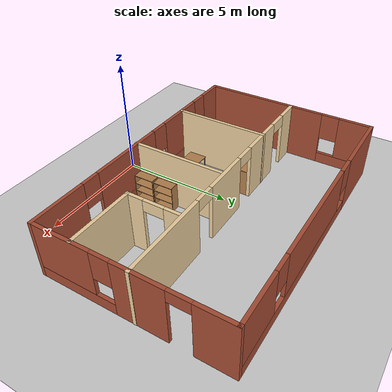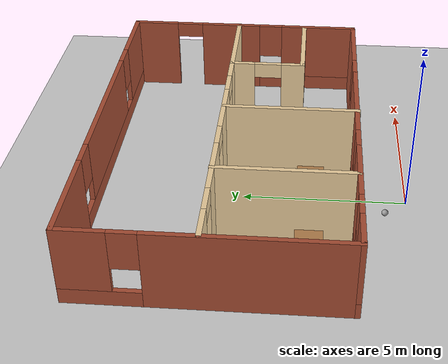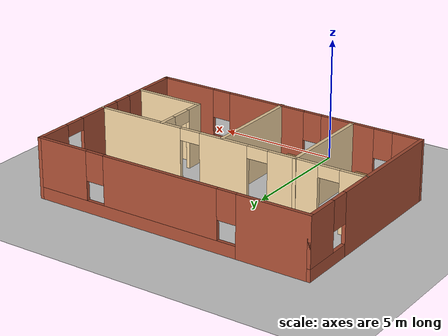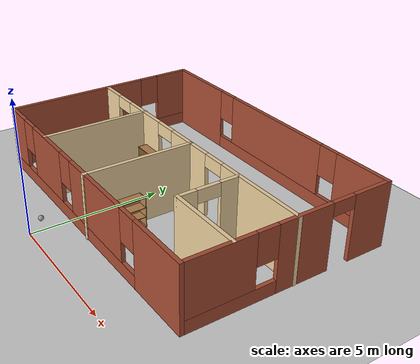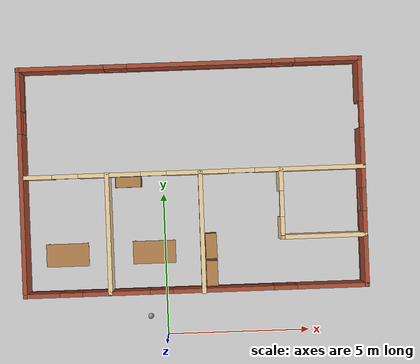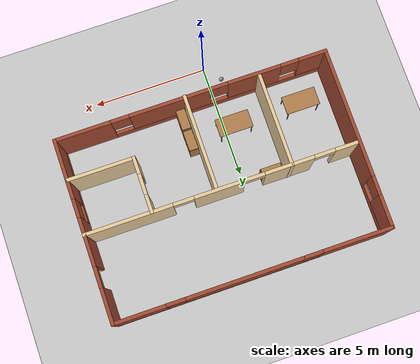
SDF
<sdf version="1.7">
 <world name="default">
  <model name="ground_plane">
   <static>1</static>
   <link name="link">
    <collision name="collision">
     <geometry><plane><normal>0 0 1</normal><size>100 100</size></plane></geometry>
     <surface>
      <contact><collide_bitmask>65535</collide_bitmask></contact>
      <friction><ode><mu>100</mu><mu2>50</mu2></ode></friction>
     </surface>
    </collision>
    <visual name="visual">
     <cast_shadows>0</cast_shadows>
     <geometry><plane><normal>0 0 1</normal><size>100 100</size></plane></geometry>
     <material>
      <script><uri>file://media/materials/scripts/gazebo.material</uri><name>Gazebo/Grey</name></script>
     </material>
    </visual>
   </link>
  </model>
  <model name="Building">
   <pose>1.04028 5.52884 0 0 -0 0</pose>
   <link name="Wall_0">
    <pose>-5.93028 0.01616 0 0 -0 1.5708</pose>
    <visual name="Wall_0_Visual_0">
     <pose>-1.14394 0 1.25 0 -0 0</pose>
     <geometry><box><size>5.71213 0.15 2.5</size></box></geometry>
     <material>
      <script><uri>file://media/materials/scripts/gazebo.material</uri><name>Gazebo/Bricks</name></script>
      <ambient>1 1 1 1</ambient>
     </material>
     <meta><layer>0</layer></meta>
    </visual>
    <collision name="Wall_0_Collision_0">
     <geometry><box><size>5.71213 0.15 2.5</size></box></geometry>
     <pose>-1.14394 0 1.25 0 -0 0</pose>
    </collision>
    <visual name="Wall_0_Visual_1">
     <pose>2.85606 0 0.25 0 -0 0</pose>
     <geometry><box><size>2.28788 0.15 0.5</size></box></geometry>
     <material>
      <script><uri>file://media/materials/scripts/gazebo.material</uri><name>Gazebo/Bricks</name></script>
      <ambient>1 1 1 1</ambient>
     </material>
     <meta><layer>0</layer></meta>
    </visual>
    <collision name="Wall_0_Collision_1">
     <geometry><box><size>2.28788 0.15 0.5</size></box></geometry>
     <pose>2.85606 0 0.25 0 -0 0</pose>
    </collision>
    <visual name="Wall_0_Visual_2">
     <pose>3.25606 0 1.5 0 -0 0</pose>
     <geometry><box><size>1.48788 0.15 2</size></box></geometry>
     <material>
      <script><uri>file://media/materials/scripts/gazebo.material</uri><name>Gazebo/Bricks</name></script>
      <ambient>1 1 1 1</ambient>
     </material>
     <meta><layer>0</layer></meta>
    </visual>
    <collision name="Wall_0_Collision_2">
     <geometry><box><size>1.48788 0.15 2</size></box></geometry>
     <pose>3.25606 0 1.5 0 -0 0</pose>
    </collision>
    <visual name="Wall_0_Visual_3">
     <pose>2.11212 0 1.9 0 -0 0</pose>
     <geometry><box><size>0.8 0.15 1.2</size></box></geometry>
     <material>
      <script><uri>file://media/materials/scripts/gazebo.material</uri><name>Gazebo/Bricks</name></script>
      <ambient>1 1 1 1</ambient>
     </material>
     <meta><layer>0</layer></meta>
    </visual>
    <collision name="Wall_0_Collision_3">
     <geometry><box><size>0.8 0.15 1.2</size></box></geometry>
     <pose>2.11212 0 1.9 0 -0 0</pose>
    </collision>
   </link>
   <link name="Wall_1">
    <pose>-0.005278 3.94116 0 0 -0 0</pose>
    <visual name="Wall_1_Visual_0">
     <pose>-4.47581 0 1.25 0 -0 0</pose>
     <geometry><box><size>3.04838 0.15 2.5</size></box></geometry>
     <material>
      <script><uri>file://media/materials/scripts/gazebo.material</uri><name>Gazebo/Bricks</name></script>
      <ambient>1 1 1 1</ambient>
     </material>
     <meta><layer>0</layer></meta>
    </visual>
    <collision name="Wall_1_Collision_0">
     <geometry><box><size>3.04838 0.15 2.5</size></box></geometry>
     <pose>-4.47581 0 1.25 0 -0 0</pose>
    </collision>
    <visual name="Wall_1_Visual_1">
     <pose>1.52419 0 0.25 0 -0 0</pose>
     <geometry><box><size>8.95162 0.15 0.5</size></box></geometry>
     <material>
      <script><uri>file://media/materials/scripts/gazebo.material</uri><name>Gazebo/Bricks</name></script>
      <ambient>1 1 1 1</ambient>
     </material>
     <meta><layer>0</layer></meta>
    </visual>
    <collision name="Wall_1_Collision_1">
     <geometry><box><size>8.95162 0.15 0.5</size></box></geometry>
     <pose>1.52419 0 0.25 0 -0 0</pose>
    </collision>
    <visual name="Wall_1_Visual_2">
     <pose>0.370959 0 1.5 0 -0 0</pose>
     <geometry><box><size>5.04515 0.15 2</size></box></geometry>
     <material>
      <script><uri>file://media/materials/scripts/gazebo.material</uri><name>Gazebo/Bricks</name></script>
      <ambient>1 1 1 1</ambient>
     </material>
     <meta><layer>0</layer></meta>
    </visual>
    <collision name="Wall_1_Collision_2">
     <geometry><box><size>5.04515 0.15 2</size></box></geometry>
     <pose>0.370959 0 1.5 0 -0 0</pose>
    </collision>
    <visual name="Wall_1_Visual_3">
     <pose>4.84677 0 1.5 0 -0 0</pose>
     <geometry><box><size>2.30647 0.15 2</size></box></geometry>
     <material>
      <script><uri>file://media/materials/scripts/gazebo.material</uri><name>Gazebo/Bricks</name></script>
      <ambient>1 1 1 1</ambient>
     </material>
     <meta><layer>0</layer></meta>
    </visual>
    <collision name="Wall_1_Collision_3">
     <geometry><box><size>2.30647 0.15 2</size></box></geometry>
     <pose>4.84677 0 1.5 0 -0 0</pose>
    </collision>
    <visual name="Wall_1_Visual_4">
     <pose>-2.55162 0 1.9 0 -0 0</pose>
     <geometry><box><size>0.8 0.15 1.2</size></box></geometry>
     <material>
      <script><uri>file://media/materials/scripts/gazebo.material</uri><name>Gazebo/Bricks</name></script>
      <ambient>1 1 1 1</ambient>
     </material>
     <meta><layer>0</layer></meta>
    </visual>
    <collision name="Wall_1_Collision_4">
     <geometry><box><size>0.8 0.15 1.2</size></box></geometry>
     <pose>-2.55162 0 1.9 0 -0 0</pose>
    </collision>
    <visual name="Wall_1_Visual_5">
     <pose>3.29353 0 1.9 0 -0 0</pose>
     <geometry><box><size>0.8 0.15 1.2</size></box></geometry>
     <material>
      <script><uri>file://media/materials/scripts/gazebo.material</uri><name>Gazebo/Bricks</name></script>
      <ambient>1 1 1 1</ambient>
     </material>
     <meta><layer>0</layer></meta>
    </visual>
    <collision name="Wall_1_Collision_5">
     <geometry><box><size>0.8 0.15 1.2</size></box></geometry>
     <pose>3.29353 0 1.9 0 -0 0</pose>
    </collision>
   </link>
   <link name="Wall_11">
    <collision name="Wall_11_Collision">
     <geometry><box><size>4.25 0.15 2.5</size></box></geometry>
     <pose>0 0 1.25 0 -0 0</pose>
    </collision>
    <visual name="Wall_11_Visual">
     <pose>0 0 1.25 0 -0 0</pose>
     <geometry><box><size>4.25 0.15 2.5</size></box></geometry>
     <material>
      <script><uri>file://media/materials/scripts/gazebo.material</uri><name>Gazebo/Grey</name></script>
      <ambient>0.921569 0.807843 0.615686 1</ambient>
     </material>
     <meta><layer>0</layer></meta>
    </visual>
    <pose>0.272165 -1.89116 0 0 0 -1.5708</pose>
   </link>
   <link name="Wall_13">
    <pose>3.06519 -0.98956 0 0 0 -1.5708</pose>
    <visual name="Wall_13_Visual_0">
     <pose>-0.838996 0 1.25 0 -0 0</pose>
     <geometry><box><size>0.822009 0.15 2.5</size></box></geometry>
     <material>
      <script><uri>file://media/materials/scripts/gazebo.material</uri><name>Gazebo/Grey</name></script>
      <ambient>0.921569 0.807843 0.615686 1</ambient>
     </material>
     <meta><layer>0</layer></meta>
    </visual>
    <collision name="Wall_13_Collision_0">
     <geometry><box><size>0.822009 0.15 2.5</size></box></geometry>
     <pose>-0.838996 0 1.25 0 -0 0</pose>
    </collision>
    <visual name="Wall_13_Visual_1">
     <pose>0.861004 0 1.25 0 -0 0</pose>
     <geometry><box><size>0.777991 0.15 2.5</size></box></geometry>
     <material>
      <script><uri>file://media/materials/scripts/gazebo.material</uri><name>Gazebo/Grey</name></script>
      <ambient>0.921569 0.807843 0.615686 1</ambient>
     </material>
     <meta><layer>0</layer></meta>
    </visual>
    <collision name="Wall_13_Collision_1">
     <geometry><box><size>0.777991 0.15 2.5</size></box></geometry>
     <pose>0.861004 0 1.25 0 -0 0</pose>
    </collision>
    <visual name="Wall_13_Visual_2">
     <pose>0.022009 0 2.25 0 -0 0</pose>
     <geometry><box><size>0.9 0.15 0.5</size></box></geometry>
     <material>
      <script><uri>file://media/materials/scripts/gazebo.material</uri><name>Gazebo/Grey</name></script>
      <ambient>0.921569 0.807843 0.615686 1</ambient>
     </material>
     <meta><layer>0</layer></meta>
    </visual>
    <collision name="Wall_13_Collision_2">
     <geometry><box><size>0.9 0.15 0.5</size></box></geometry>
     <pose>0.022009 0 2.25 0 -0 0</pose>
    </collision>
   </link>
   <link name="Wall_14">
    <collision name="Wall_14_Collision">
     <geometry><box><size>3 0.15 2.5</size></box></geometry>
     <pose>0 0 1.25 0 -0 0</pose>
    </collision>
    <visual name="Wall_14_Visual">
     <pose>0 0 1.25 0 -0 0</pose>
     <geometry><box><size>3 0.15 2.5</size></box></geometry>
     <material>
      <script><uri>file://media/materials/scripts/gazebo.material</uri><name>Gazebo/Grey</name></script>
      <ambient>0.921569 0.807843 0.615686 1</ambient>
     </material>
     <meta><layer>0</layer></meta>
    </visual>
    <pose>4.49019 -2.16456 0 0 -0 0</pose>
   </link>
   <link name="Wall_2">
    <pose>5.91972 0.01616 0 0 0 -1.5708</pose>
    <visual name="Wall_2_Visual_0">
     <pose>-3.21405 0 1.25 0 -0 0</pose>
     <geometry><box><size>1.57191 0.15 2.5</size></box></geometry>
     <material>
      <script><uri>file://media/materials/scripts/gazebo.material</uri><name>Gazebo/Bricks</name></script>
      <ambient>1 1 1 1</ambient>
     </material>
     <meta><layer>0</layer></meta>
    </visual>
    <collision name="Wall_2_Collision_0">
     <geometry><box><size>1.57191 0.15 2.5</size></box></geometry>
     <pose>-3.21405 0 1.25 0 -0 0</pose>
    </collision>
    <visual name="Wall_2_Visual_1">
     <pose>-0.481912 0 1.25 0 -0 0</pose>
     <geometry><box><size>2.09236 0.15 2.5</size></box></geometry>
     <material>
      <script><uri>file://media/materials/scripts/gazebo.material</uri><name>Gazebo/Bricks</name></script>
      <ambient>1 1 1 1</ambient>
     </material>
     <meta><layer>0</layer></meta>
    </visual>
    <collision name="Wall_2_Collision_1">
     <geometry><box><size>2.09236 0.15 2.5</size></box></geometry>
     <pose>-0.481912 0 1.25 0 -0 0</pose>
    </collision>
    <visual name="Wall_2_Visual_2">
     <pose>2.28213 0 0.25 0 -0 0</pose>
     <geometry><box><size>3.43573 0.15 0.5</size></box></geometry>
     <material>
      <script><uri>file://media/materials/scripts/gazebo.material</uri><name>Gazebo/Bricks</name></script>
      <ambient>1 1 1 1</ambient>
     </material>
     <meta><layer>0</layer></meta>
    </visual>
    <collision name="Wall_2_Collision_2">
     <geometry><box><size>3.43573 0.15 0.5</size></box></geometry>
     <pose>2.28213 0 0.25 0 -0 0</pose>
    </collision>
    <visual name="Wall_2_Visual_3">
     <pose>2.68214 0 1.5 0 -0 0</pose>
     <geometry><box><size>2.63573 0.15 2</size></box></geometry>
     <material>
      <script><uri>file://media/materials/scripts/gazebo.material</uri><name>Gazebo/Bricks</name></script>
      <ambient>1 1 1 1</ambient>
     </material>
     <meta><layer>0</layer></meta>
    </visual>
    <collision name="Wall_2_Collision_3">
     <geometry><box><size>2.63573 0.15 2</size></box></geometry>
     <pose>2.68214 0 1.5 0 -0 0</pose>
    </collision>
    <visual name="Wall_2_Visual_4">
     <pose>0.964269 0 1.9 0 -0 0</pose>
     <geometry><box><size>0.8 0.15 1.2</size></box></geometry>
     <material>
      <script><uri>file://media/materials/scripts/gazebo.material</uri><name>Gazebo/Bricks</name></script>
      <ambient>1 1 1 1</ambient>
     </material>
     <meta><layer>0</layer></meta>
    </visual>
    <collision name="Wall_2_Collision_4">
     <geometry><box><size>0.8 0.15 1.2</size></box></geometry>
     <pose>0.964269 0 1.9 0 -0 0</pose>
    </collision>
    <visual name="Wall_2_Visual_5">
     <pose>-1.97809 0 2.25 0 -0 0</pose>
     <geometry><box><size>0.9 0.15 0.5</size></box></geometry>
     <material>
      <script><uri>file://media/materials/scripts/gazebo.material</uri><name>Gazebo/Bricks</name></script>
      <ambient>1 1 1 1</ambient>
     </material>
     <meta><layer>0</layer></meta>
    </visual>
    <collision name="Wall_2_Collision_5">
     <geometry><box><size>0.9 0.15 0.5</size></box></geometry>
     <pose>-1.97809 0 2.25 0 -0 0</pose>
    </collision>
   </link>
   <link name="Wall_3">
    <pose>-0.005278 -3.90884 0 0 -0 3.14159</pose>
    <visual name="Wall_3_Visual_0">
     <pose>-4.75448 0 1.25 0 -0 0</pose>
     <geometry><box><size>2.49105 0.15 2.5</size></box></geometry>
     <material>
      <script><uri>file://media/materials/scripts/gazebo.material</uri><name>Gazebo/Bricks</name></script>
      <ambient>1 1 1 1</ambient>
     </material>
     <meta><layer>0</layer></meta>
    </visual>
    <collision name="Wall_3_Collision_0">
     <geometry><box><size>2.49105 0.15 2.5</size></box></geometry>
     <pose>-4.75448 0 1.25 0 -0 0</pose>
    </collision>
    <visual name="Wall_3_Visual_1">
     <pose>1.24552 0 0.25 0 -0 0</pose>
     <geometry><box><size>9.50895 0.15 0.5</size></box></geometry>
     <material>
      <script><uri>file://media/materials/scripts/gazebo.material</uri><name>Gazebo/Bricks</name></script>
      <ambient>1 1 1 1</ambient>
     </material>
     <meta><layer>0</layer></meta>
    </visual>
    <collision name="Wall_3_Collision_1">
     <geometry><box><size>9.50895 0.15 0.5</size></box></geometry>
     <pose>1.24552 0 0.25 0 -0 0</pose>
    </collision>
    <visual name="Wall_3_Visual_2">
     <pose>-0.955473 0 1.5 0 -0 0</pose>
     <geometry><box><size>3.50695 0.15 2</size></box></geometry>
     <material>
      <script><uri>file://media/materials/scripts/gazebo.material</uri><name>Gazebo/Bricks</name></script>
      <ambient>1 1 1 1</ambient>
     </material>
     <meta><layer>0</layer></meta>
    </visual>
    <collision name="Wall_3_Collision_2">
     <geometry><box><size>3.50695 0.15 2</size></box></geometry>
     <pose>-0.955473 0 1.5 0 -0 0</pose>
    </collision>
    <visual name="Wall_3_Visual_3">
     <pose>2.76696 0 1.5 0 -0 0</pose>
     <geometry><box><size>2.33792 0.15 2</size></box></geometry>
     <material>
      <script><uri>file://media/materials/scripts/gazebo.material</uri><name>Gazebo/Bricks</name></script>
      <ambient>1 1 1 1</ambient>
     </material>
     <meta><layer>0</layer></meta>
    </visual>
    <collision name="Wall_3_Collision_3">
     <geometry><box><size>2.33792 0.15 2</size></box></geometry>
     <pose>2.76696 0 1.5 0 -0 0</pose>
    </collision>
    <visual name="Wall_3_Visual_4">
     <pose>5.36796 0 1.5 0 -0 0</pose>
     <geometry><box><size>1.26408 0.15 2</size></box></geometry>
     <material>
      <script><uri>file://media/materials/scripts/gazebo.material</uri><name>Gazebo/Bricks</name></script>
      <ambient>1 1 1 1</ambient>
     </material>
     <meta><layer>0</layer></meta>
    </visual>
    <collision name="Wall_3_Collision_4">
     <geometry><box><size>1.26408 0.15 2</size></box></geometry>
     <pose>5.36796 0 1.5 0 -0 0</pose>
    </collision>
    <visual name="Wall_3_Visual_5">
     <pose>-3.10895 0 1.9 0 -0 0</pose>
     <geometry><box><size>0.8 0.15 1.2</size></box></geometry>
     <material>
      <script><uri>file://media/materials/scripts/gazebo.material</uri><name>Gazebo/Bricks</name></script>
      <ambient>1 1 1 1</ambient>
     </material>
     <meta><layer>0</layer></meta>
    </visual>
    <collision name="Wall_3_Collision_5">
     <geometry><box><size>0.8 0.15 1.2</size></box></geometry>
     <pose>-3.10895 0 1.9 0 -0 0</pose>
    </collision>
    <visual name="Wall_3_Visual_6">
     <pose>1.198 0 1.9 0 -0 0</pose>
     <geometry><box><size>0.8 0.15 1.2</size></box></geometry>
     <material>
      <script><uri>file://media/materials/scripts/gazebo.material</uri><name>Gazebo/Bricks</name></script>
      <ambient>1 1 1 1</ambient>
     </material>
     <meta><layer>0</layer></meta>
    </visual>
    <collision name="Wall_3_Collision_6">
     <geometry><box><size>0.8 0.15 1.2</size></box></geometry>
     <pose>1.198 0 1.9 0 -0 0</pose>
    </collision>
    <visual name="Wall_3_Visual_7">
     <pose>4.33592 0 1.9 0 -0 0</pose>
     <geometry><box><size>0.8 0.15 1.2</size></box></geometry>
     <material>
      <script><uri>file://media/materials/scripts/gazebo.material</uri><name>Gazebo/Bricks</name></script>
      <ambient>1 1 1 1</ambient>
     </material>
     <meta><layer>0</layer></meta>
    </visual>
    <collision name="Wall_3_Collision_7">
     <geometry><box><size>0.8 0.15 1.2</size></box></geometry>
     <pose>4.33592 0 1.9 0 -0 0</pose>
    </collision>
   </link>
   <link name="Wall_5">
    <pose>0.005278 0.194603 0 0 -0 0</pose>
    <visual name="Wall_5_Visual_0">
     <pose>-5.43237 0 1.25 0 -0 0</pose>
     <geometry><box><size>1.13525 0.15 2.5</size></box></geometry>
     <material>
      <script><uri>file://media/materials/scripts/gazebo.material</uri><name>Gazebo/Grey</name></script>
      <ambient>0.921569 0.807843 0.615686 1</ambient>
     </material>
     <meta><layer>0</layer></meta>
    </visual>
    <collision name="Wall_5_Collision_0">
     <geometry><box><size>1.13525 0.15 2.5</size></box></geometry>
     <pose>-5.43237 0 1.25 0 -0 0</pose>
    </collision>
    <visual name="Wall_5_Visual_1">
     <pose>-2.88524 0 1.25 0 -0 0</pose>
     <geometry><box><size>2.15902 0.15 2.5</size></box></geometry>
     <material>
      <script><uri>file://media/materials/scripts/gazebo.material</uri><name>Gazebo/Grey</name></script>
      <ambient>0.921569 0.807843 0.615686 1</ambient>
     </material>
     <meta><layer>0</layer></meta>
    </visual>
    <collision name="Wall_5_Collision_1">
     <geometry><box><size>2.15902 0.15 2.5</size></box></geometry>
     <pose>-2.88524 0 1.25 0 -0 0</pose>
    </collision>
    <visual name="Wall_5_Visual_2">
     <pose>0.173787 0 1.25 0 -0 0</pose>
     <geometry><box><size>2.15902 0.15 2.5</size></box></geometry>
     <material>
      <script><uri>file://media/materials/scripts/gazebo.material</uri><name>Gazebo/Grey</name></script>
      <ambient>0.921569 0.807843 0.615686 1</ambient>
     </material>
     <meta><layer>0</layer></meta>
    </visual>
    <collision name="Wall_5_Collision_2">
     <geometry><box><size>2.15902 0.15 2.5</size></box></geometry>
     <pose>0.173787 0 1.25 0 -0 0</pose>
    </collision>
    <visual name="Wall_5_Visual_3">
     <pose>4.07665 0 1.25 0 -0 0</pose>
     <geometry><box><size>3.8467 0.15 2.5</size></box></geometry>
     <material>
      <script><uri>file://media/materials/scripts/gazebo.material</uri><name>Gazebo/Grey</name></script>
      <ambient>0.921569 0.807843 0.615686 1</ambient>
     </material>
     <meta><layer>0</layer></meta>
    </visual>
    <collision name="Wall_5_Collision_3">
     <geometry><box><size>3.8467 0.15 2.5</size></box></geometry>
     <pose>4.07665 0 1.25 0 -0 0</pose>
    </collision>
    <visual name="Wall_5_Visual_4">
     <pose>-4.41475 0 2.25 0 -0 0</pose>
     <geometry><box><size>0.9 0.15 0.5</size></box></geometry>
     <material>
      <script><uri>file://media/materials/scripts/gazebo.material</uri><name>Gazebo/Grey</name></script>
      <ambient>0.921569 0.807843 0.615686 1</ambient>
     </material>
     <meta><layer>0</layer></meta>
    </visual>
    <collision name="Wall_5_Collision_4">
     <geometry><box><size>0.9 0.15 0.5</size></box></geometry>
     <pose>-4.41475 0 2.25 0 -0 0</pose>
    </collision>
    <visual name="Wall_5_Visual_5">
     <pose>-1.35573 0 2.25 0 -0 0</pose>
     <geometry><box><size>0.9 0.15 0.5</size></box></geometry>
     <material>
      <script><uri>file://media/materials/scripts/gazebo.material</uri><name>Gazebo/Grey</name></script>
      <ambient>0.921569 0.807843 0.615686 1</ambient>
     </material>
     <meta><layer>0</layer></meta>
    </visual>
    <collision name="Wall_5_Collision_5">
     <geometry><box><size>0.9 0.15 0.5</size></box></geometry>
     <pose>-1.35573 0 2.25 0 -0 0</pose>
    </collision>
    <visual name="Wall_5_Visual_6">
     <pose>1.7033 0 2.25 0 -0 0</pose>
     <geometry><box><size>0.9 0.15 0.5</size></box></geometry>
     <material>
      <script><uri>file://media/materials/scripts/gazebo.material</uri><name>Gazebo/Grey</name></script>
      <ambient>0.921569 0.807843 0.615686 1</ambient>
     </material>
     <meta><layer>0</layer></meta>
    </visual>
    <collision name="Wall_5_Collision_6">
     <geometry><box><size>0.9 0.15 0.5</size></box></geometry>
     <pose>1.7033 0 2.25 0 -0 0</pose>
    </collision>
   </link>
   <link name="Wall_9">
    <collision name="Wall_9_Collision">
     <geometry><box><size>4.25 0.15 2.5</size></box></geometry>
     <pose>0 0 1.25 0 -0 0</pose>
    </collision>
    <visual name="Wall_9_Visual">
     <pose>0 0 1.25 0 -0 0</pose>
     <geometry><box><size>4.25 0.15 2.5</size></box></geometry>
     <material>
      <script><uri>file://media/materials/scripts/gazebo.material</uri><name>Gazebo/Grey</name></script>
      <ambient>0.921569 0.807843 0.615686 1</ambient>
     </material>
     <meta><layer>0</layer></meta>
    </visual>
    <pose>-2.97306 -1.83796 0 0 0 -1.5708</pose>
   </link>
   <static>1</static>
  </model>
  <model name="table">
   <static>1</static>
   <link name="link">
    <collision name="surface">
     <pose>0 0 1 0 -0 0</pose>
     <geometry><box><size>1.5 0.8 0.03</size></box></geometry>
     <surface><friction><ode><mu>0.6</mu><mu2>0.6</mu2></ode></friction></surface>
    </collision>
    <visual name="visual1">
     <pose>0 0 1 0 -0 0</pose>
     <geometry><box><size>1.5 0.8 0.03</size></box></geometry>
     <material>
      <script><uri>file://media/materials/scripts/gazebo.material</uri><name>Gazebo/Wood</name></script>
     </material>
    </visual>
    <collision name="front_left_leg">
     <pose>0.68 0.38 0.5 0 -0 0</pose>
     <geometry><cylinder><radius>0.02</radius><length>1</length></cylinder></geometry>
    </collision>
    <visual name="front_left_leg">
     <pose>0.68 0.38 0.5 0 -0 0</pose>
     <geometry><cylinder><radius>0.02</radius><length>1</length></cylinder></geometry>
     <material>
      <script><uri>file://media/materials/scripts/gazebo.material</uri><name>Gazebo/Grey</name></script>
     </material>
    </visual>
    <collision name="front_right_leg">
     <pose>0.68 -0.38 0.5 0 -0 0</pose>
     <geometry><cylinder><radius>0.02</radius><length>1</length></cylinder></geometry>
    </collision>
    <visual name="front_right_leg">
     <pose>0.68 -0.38 0.5 0 -0 0</pose>
     <geometry><cylinder><radius>0.02</radius><length>1</length></cylinder></geometry>
     <material>
      <script><uri>file://media/materials/scripts/gazebo.material</uri><name>Gazebo/Grey</name></script>
     </material>
    </visual>
    <collision name="back_right_leg">
     <pose>-0.68 -0.38 0.5 0 -0 0</pose>
     <geometry><cylinder><radius>0.02</radius><length>1</length></cylinder></geometry>
    </collision>
    <visual name="back_right_leg">
     <pose>-0.68 -0.38 0.5 0 -0 0</pose>
     <geometry><cylinder><radius>0.02</radius><length>1</length></cylinder></geometry>
     <material>
      <script><uri>file://media/materials/scripts/gazebo.material</uri><name>Gazebo/Grey</name></script>
     </material>
    </visual>
    <collision name="back_left_leg">
     <pose>-0.68 0.38 0.5 0 -0 0</pose>
     <geometry><cylinder><radius>0.02</radius><length>1</length></cylinder></geometry>
    </collision>
    <visual name="back_left_leg">
     <pose>-0.68 0.38 0.5 0 -0 0</pose>
     <geometry><cylinder><radius>0.02</radius><length>1</length></cylinder></geometry>
     <material>
      <script><uri>file://media/materials/scripts/gazebo.material</uri><name>Gazebo/Grey</name></script>
     </material>
    </visual>
   </link>
   <pose>-0.388248 2.97596 0 0 -0 0</pose>
  </model>
  <model name="table_0">
   <static>1</static>
   <link name="link">
    <collision name="surface">
     <pose>0 0 1 0 -0 0</pose>
     <geometry><box><size>1.5 0.8 0.03</size></box></geometry>
     <surface><friction><ode><mu>0.6</mu><mu2>0.6</mu2></ode></friction></surface>
    </collision>
    <visual name="visual1">
     <pose>0 0 1 0 -0 0</pose>
     <geometry><box><size>1.5 0.8 0.03</size></box></geometry>
     <material>
      <script><uri>file://media/materials/scripts/gazebo.material</uri><name>Gazebo/Wood</name></script>
     </material>
    </visual>
    <collision name="front_left_leg">
     <pose>0.68 0.38 0.5 0 -0 0</pose>
     <geometry><cylinder><radius>0.02</radius><length>1</length></cylinder></geometry>
    </collision>
    <visual name="front_left_leg">
     <pose>0.68 0.38 0.5 0 -0 0</pose>
     <geometry><cylinder><radius>0.02</radius><length>1</length></cylinder></geometry>
     <material>
      <script><uri>file://media/materials/scripts/gazebo.material</uri><name>Gazebo/Grey</name></script>
     </material>
    </visual>
    <collision name="front_right_leg">
     <pose>0.68 -0.38 0.5 0 -0 0</pose>
     <geometry><cylinder><radius>0.02</radius><length>1</length></cylinder></geometry>
    </collision>
    <visual name="front_right_leg">
     <pose>0.68 -0.38 0.5 0 -0 0</pose>
     <geometry><cylinder><radius>0.02</radius><length>1</length></cylinder></geometry>
     <material>
      <script><uri>file://media/materials/scripts/gazebo.material</uri><name>Gazebo/Grey</name></script>
     </material>
    </visual>
    <collision name="back_right_leg">
     <pose>-0.68 -0.38 0.5 0 -0 0</pose>
     <geometry><cylinder><radius>0.02</radius><length>1</length></cylinder></geometry>
    </collision>
    <visual name="back_right_leg">
     <pose>-0.68 -0.38 0.5 0 -0 0</pose>
     <geometry><cylinder><radius>0.02</radius><length>1</length></cylinder></geometry>
     <material>
      <script><uri>file://media/materials/scripts/gazebo.material</uri><name>Gazebo/Grey</name></script>
     </material>
    </visual>
    <collision name="back_left_leg">
     <pose>-0.68 0.38 0.5 0 -0 0</pose>
     <geometry><cylinder><radius>0.02</radius><length>1</length></cylinder></geometry>
    </collision>
    <visual name="back_left_leg">
     <pose>-0.68 0.38 0.5 0 -0 0</pose>
     <geometry><cylinder><radius>0.02</radius><length>1</length></cylinder></geometry>
     <material>
      <script><uri>file://media/materials/scripts/gazebo.material</uri><name>Gazebo/Grey</name></script>
     </material>
    </visual>
   </link>
   <pose>-3.44406 2.96738 0 0 -0 0</pose>
  </model>
  <model name="bookshelf">
   <static>1</static>
   <link name="link">
    <inertial><mass>1</mass></inertial>
    <collision name="back">
     <pose>0 0.005 0.6 0 -0 0</pose>
     <geometry><box><size>0.9 0.01 1.2</size></box></geometry>
    </collision>
    <visual name="visual1">
     <pose>0 0.005 0.6 0 -0 0</pose>
     <geometry><box><size>0.9 0.01 1.2</size></box></geometry>
     <material>
      <script><uri>file://media/materials/scripts/gazebo.material</uri><name>Gazebo/Wood</name></script>
     </material>
    </visual>
    <collision name="left_side">
     <pose>0.45 -0.195 0.6 0 -0 0</pose>
     <geometry><box><size>0.02 0.4 1.2</size></box></geometry>
    </collision>
    <visual name="visual2">
     <pose>0.45 -0.195 0.6 0 -0 0</pose>
     <geometry><box><size>0.02 0.4 1.2</size></box></geometry>
     <material>
      <script><uri>file://media/materials/scripts/gazebo.material</uri><name>Gazebo/Wood</name></script>
     </material>
    </visual>
    <collision name="right_side">
     <pose>-0.45 -0.195 0.6 0 -0 0</pose>
     <geometry><box><size>0.02 0.4 1.2</size></box></geometry>
    </collision>
    <visual name="visual3">
     <pose>-0.45 -0.195 0.6 0 -0 0</pose>
     <geometry><box><size>0.02 0.4 1.2</size></box></geometry>
     <material>
      <script><uri>file://media/materials/scripts/gazebo.material</uri><name>Gazebo/Wood</name></script>
     </material>
    </visual>
    <collision name="bottom">
     <pose>0 -0.195 0.03 0 -0 0</pose>
     <geometry><box><size>0.88 0.4 0.06</size></box></geometry>
    </collision>
    <visual name="visual4">
     <pose>0 -0.195 0.03 0 -0 0</pose>
     <geometry><box><size>0.88 0.4 0.06</size></box></geometry>
     <material>
      <script><uri>file://media/materials/scripts/gazebo.material</uri><name>Gazebo/Wood</name></script>
     </material>
    </visual>
    <collision name="top">
     <pose>0 -0.195 1.19 0 -0 0</pose>
     <geometry><box><size>0.88 0.4 0.02</size></box></geometry>
    </collision>
    <visual name="visual5">
     <pose>0 -0.195 1.19 0 -0 0</pose>
     <geometry><box><size>0.88 0.4 0.02</size></box></geometry>
     <material>
      <script><uri>file://media/materials/scripts/gazebo.material</uri><name>Gazebo/Wood</name></script>
     </material>
    </visual>
    <collision name="low_shelf">
     <pose>0 -0.195 0.43 0 -0 0</pose>
     <geometry><box><size>0.88 0.4 0.02</size></box></geometry>
    </collision>
    <visual name="visual6">
     <pose>0 -0.195 0.43 0 -0 0</pose>
     <geometry><box><size>0.88 0.4 0.02</size></box></geometry>
     <material>
      <script><uri>file://media/materials/scripts/gazebo.material</uri><name>Gazebo/Wood</name></script>
     </material>
    </visual>
    <collision name="high_shelf">
     <pose>0 -0.195 0.8 0 -0 0</pose>
     <geometry><box><size>0.88 0.4 0.02</size></box></geometry>
    </collision>
    <visual name="visual7">
     <pose>0 -0.195 0.8 0 -0 0</pose>
     <geometry><box><size>0.88 0.4 0.02</size></box></geometry>
     <material>
      <script><uri>file://media/materials/scripts/gazebo.material</uri><name>Gazebo/Wood</name></script>
     </material>
    </visual>
   </link>
   <pose>-1.22377 5.6787 0 0 -0 0</pose>
  </model>
  <model name="bookshelf_0">
   <static>1</static>
   <link name="link">
    <inertial><mass>1</mass></inertial>
    <collision name="back">
     <pose>0 0.005 0.6 0 -0 0</pose>
     <geometry><box><size>0.9 0.01 1.2</size></box></geometry>
    </collision>
    <visual name="visual1">
     <pose>0 0.005 0.6 0 -0 0</pose>
     <geometry><box><size>0.9 0.01 1.2</size></box></geometry>
     <material>
      <script><uri>file://media/materials/scripts/gazebo.material</uri><name>Gazebo/Wood</name></script>
     </material>
    </visual>
    <collision name="left_side">
     <pose>0.45 -0.195 0.6 0 -0 0</pose>
     <geometry><box><size>0.02 0.4 1.2</size></box></geometry>
    </collision>
    <visual name="visual2">
     <pose>0.45 -0.195 0.6 0 -0 0</pose>
     <geometry><box><size>0.02 0.4 1.2</size></box></geometry>
     <material>
      <script><uri>file://media/materials/scripts/gazebo.material</uri><name>Gazebo/Wood</name></script>
     </material>
    </visual>
    <collision name="right_side">
     <pose>-0.45 -0.195 0.6 0 -0 0</pose>
     <geometry><box><size>0.02 0.4 1.2</size></box></geometry>
    </collision>
    <visual name="visual3">
     <pose>-0.45 -0.195 0.6 0 -0 0</pose>
     <geometry><box><size>0.02 0.4 1.2</size></box></geometry>
     <material>
      <script><uri>file://media/materials/scripts/gazebo.material</uri><name>Gazebo/Wood</name></script>
     </material>
    </visual>
    <collision name="bottom">
     <pose>0 -0.195 0.03 0 -0 0</pose>
     <geometry><box><size>0.88 0.4 0.06</size></box></geometry>
    </collision>
    <visual name="visual4">
     <pose>0 -0.195 0.03 0 -0 0</pose>
     <geometry><box><size>0.88 0.4 0.06</size></box></geometry>
     <material>
      <script><uri>file://media/materials/scripts/gazebo.material</uri><name>Gazebo/Wood</name></script>
     </material>
    </visual>
    <collision name="top">
     <pose>0 -0.195 1.19 0 -0 0</pose>
     <geometry><box><size>0.88 0.4 0.02</size></box></geometry>
    </collision>
    <visual name="visual5">
     <pose>0 -0.195 1.19 0 -0 0</pose>
     <geometry><box><size>0.88 0.4 0.02</size></box></geometry>
     <material>
      <script><uri>file://media/materials/scripts/gazebo.material</uri><name>Gazebo/Wood</name></script>
     </material>
    </visual>
    <collision name="low_shelf">
     <pose>0 -0.195 0.43 0 -0 0</pose>
     <geometry><box><size>0.88 0.4 0.02</size></box></geometry>
    </collision>
    <visual name="visual6">
     <pose>0 -0.195 0.43 0 -0 0</pose>
     <geometry><box><size>0.88 0.4 0.02</size></box></geometry>
     <material>
      <script><uri>file://media/materials/scripts/gazebo.material</uri><name>Gazebo/Wood</name></script>
     </material>
    </visual>
    <collision name="high_shelf">
     <pose>0 -0.195 0.8 0 -0 0</pose>
     <geometry><box><size>0.88 0.4 0.02</size></box></geometry>
    </collision>
    <visual name="visual7">
     <pose>0 -0.195 0.8 0 -0 0</pose>
     <geometry><box><size>0.88 0.4 0.02</size></box></geometry>
     <material>
      <script><uri>file://media/materials/scripts/gazebo.material</uri><name>Gazebo/Wood</name></script>
     </material>
    </visual>
   </link>
   <pose>1.4319 2.15852 0 -0.006267 -0.001356 1.57563</pose>
  </model>
  <model name="bookshelf_1">
   <static>1</static>
   <link name="link">
    <inertial><mass>1</mass></inertial>
    <collision name="back">
     <pose>0 0.005 0.6 0 -0 0</pose>
     <geometry><box><size>0.9 0.01 1.2</size></box></geometry>
    </collision>
    <visual name="visual1">
     <pose>0 0.005 0.6 0 -0 0</pose>
     <geometry><box><size>0.9 0.01 1.2</size></box></geometry>
     <material>
      <script><uri>file://media/materials/scripts/gazebo.material</uri><name>Gazebo/Wood</name></script>
     </material>
    </visual>
    <collision name="left_side">
     <pose>0.45 -0.195 0.6 0 -0 0</pose>
     <geometry><box><size>0.02 0.4 1.2</size></box></geometry>
    </collision>
    <visual name="visual2">
     <pose>0.45 -0.195 0.6 0 -0 0</pose>
     <geometry><box><size>0.02 0.4 1.2</size></box></geometry>
     <material>
      <script><uri>file://media/materials/scripts/gazebo.material</uri><name>Gazebo/Wood</name></script>
     </material>
    </visual>
    <collision name="right_side">
     <pose>-0.45 -0.195 0.6 0 -0 0</pose>
     <geometry><box><size>0.02 0.4 1.2</size></box></geometry>
    </collision>
    <visual name="visual3">
     <pose>-0.45 -0.195 0.6 0 -0 0</pose>
     <geometry><box><size>0.02 0.4 1.2</size></box></geometry>
     <material>
      <script><uri>file://media/materials/scripts/gazebo.material</uri><name>Gazebo/Wood</name></script>
     </material>
    </visual>
    <collision name="bottom">
     <pose>0 -0.195 0.03 0 -0 0</pose>
     <geometry><box><size>0.88 0.4 0.06</size></box></geometry>
    </collision>
    <visual name="visual4">
     <pose>0 -0.195 0.03 0 -0 0</pose>
     <geometry><box><size>0.88 0.4 0.06</size></box></geometry>
     <material>
      <script><uri>file://media/materials/scripts/gazebo.material</uri><name>Gazebo/Wood</name></script>
     </material>
    </visual>
    <collision name="top">
     <pose>0 -0.195 1.19 0 -0 0</pose>
     <geometry><box><size>0.88 0.4 0.02</size></box></geometry>
    </collision>
    <visual name="visual5">
     <pose>0 -0.195 1.19 0 -0 0</pose>
     <geometry><box><size>0.88 0.4 0.02</size></box></geometry>
     <material>
      <script><uri>file://media/materials/scripts/gazebo.material</uri><name>Gazebo/Wood</name></script>
     </material>
    </visual>
    <collision name="low_shelf">
     <pose>0 -0.195 0.43 0 -0 0</pose>
     <geometry><box><size>0.88 0.4 0.02</size></box></geometry>
    </collision>
    <visual name="visual6">
     <pose>0 -0.195 0.43 0 -0 0</pose>
     <geometry><box><size>0.88 0.4 0.02</size></box></geometry>
     <material>
      <script><uri>file://media/materials/scripts/gazebo.material</uri><name>Gazebo/Wood</name></script>
     </material>
    </visual>
    <collision name="high_shelf">
     <pose>0 -0.195 0.8 0 -0 0</pose>
     <geometry><box><size>0.88 0.4 0.02</size></box></geometry>
    </collision>
    <visual name="visual7">
     <pose>0 -0.195 0.8 0 -0 0</pose>
     <geometry><box><size>0.88 0.4 0.02</size></box></geometry>
     <material>
      <script><uri>file://media/materials/scripts/gazebo.material</uri><name>Gazebo/Wood</name></script>
     </material>
    </visual>
   </link>
   <pose>1.42211 3.11542 0 0 -0 1.58756</pose>
  </model>
  <model name="my_ball">
   <link name="link">
    <inertial>
     <mass>1</mass>
     <inertia><ixx>0.1</ixx><ixy>0</ixy><ixz>0</ixz><iyy>0.1</iyy><iyz>0</iyz><izz>0.1</izz></inertia>
    </inertial>
    <visual name="visual">
     <geometry><sphere><radius>0.1</radius></sphere></geometry>
     <material>
      <script><name>Gazebo/Grey</name><uri>file://media/materials/scripts/gazebo.material</uri></script>
      <shader type="pixel"><normal_map>__default__</normal_map></shader>
      <ambient>1 1 1 1</ambient>
      <diffuse>1 1 1 1</diffuse>
      <specular>1 1 1 1</specular>
      <emissive>1 1 1 1</emissive>
     </material>
    </visual>
    <collision name="collision">
     <geometry><sphere><radius>0.1</radius></sphere></geometry>
     <surface>
      <friction>
       <ode><mu>1</mu><mu2>1</mu2><fdir1>0 0 0</fdir1><slip1>0</slip1><slip2>0</slip2></ode>
       <torsional>
        <coefficient>1</coefficient>
        <patch_radius>0</patch_radius>
        <surface_radius>0</surface_radius>
        <use_patch_radius>1</use_patch_radius>
        <ode><slip>0</slip></ode>
       </torsional>
      </friction>
      <bounce><restitution_coefficient>0</restitution_coefficient><threshold>1e+06</threshold></bounce>
      <contact>
       <collide_without_contact>0</collide_without_contact>
       <collide_without_contact_bitmask>1</collide_without_contact_bitmask>
       <collide_bitmask>1</collide_bitmask>
       <ode>
        <soft_cfm>0</soft_cfm>
        <soft_erp>0.2</soft_erp>
        <kp>1e+13</kp>
        <kd>1</kd>
        <max_vel>0.01</max_vel>
        <min_depth>0</min_depth>
       </ode>
       <bullet>
        <split_impulse>1</split_impulse>
        <split_impulse_penetration_threshold>-0.01</split_impulse_penetration_threshold>
        <soft_cfm>0</soft_cfm>
        <soft_erp>0.2</soft_erp>
        <kp>1e+13</kp>
        <kd>1</kd>
       </bullet>
      </contact>
     </surface>
    </collision>
   </link>
   <static>0</static>
   <pose>-0.603052 0.676076 0.1 0 -0 0</pose>
  </model>
 </world>
</sdf>
